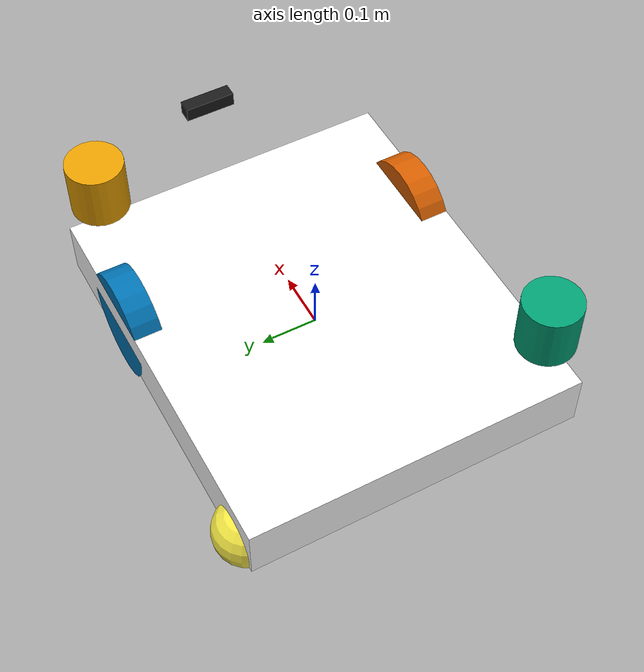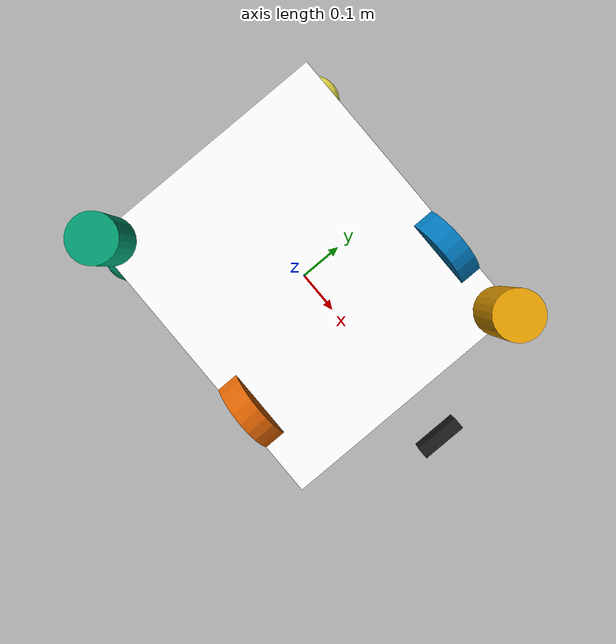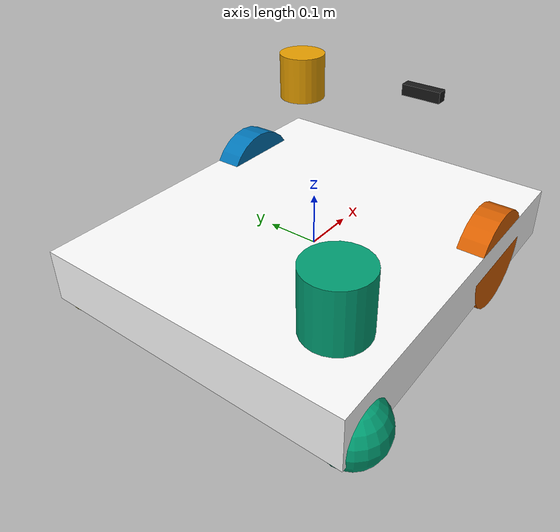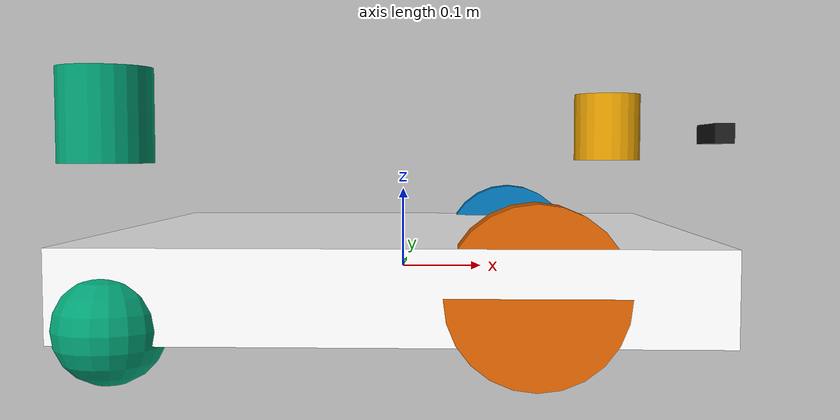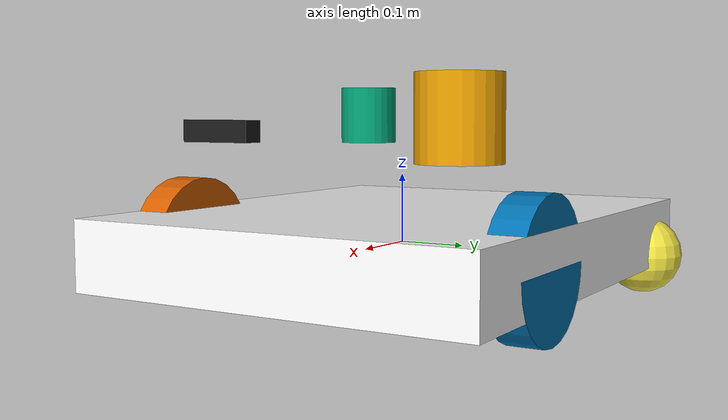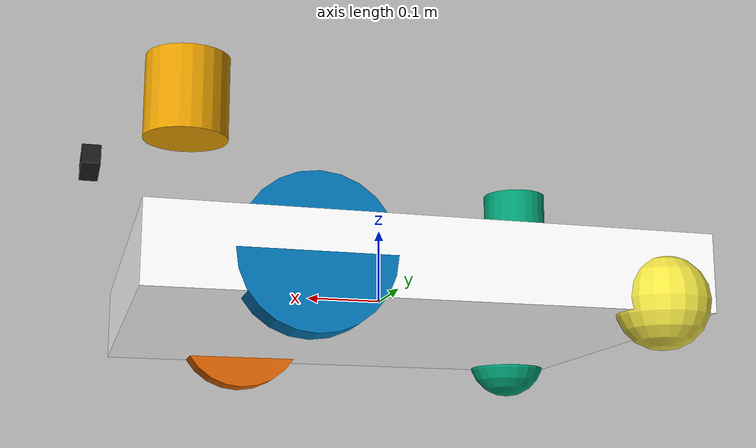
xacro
<?xml version="1.0"?>

<robot name="movensys_navigation" xmlns:xacro="http://www.ros.org/wiki/xacro">

    <xacro:include filename="$(find movensys_navigation_description)/urdf/diffbot/diffbot.xacro" />
    <xacro:include filename="$(find movensys_navigation_description)/urdf/diffbot/perception.xacro" />

    <xacro:diffbot />

</robot>

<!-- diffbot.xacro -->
<robot xmlns:xacro="http://www.ros.org/wiki/xacro">

<xacro:macro name="diffbot">

  	<link name="base_link">
		<visual>
			<geometry>
				<box size="0.7 0.6 0.1"></box>
			</geometry>
			<origin rpy="0 0 0" xyz="0 0 0"></origin>
      		<material name="">
        		<color rgba="1 1 1 1" />
      		</material>
		</visual>
		<collision>
			<geometry>
				<box size="0.7 0.6 0.1"></box>
			</geometry>
			<origin rpy="0 0 0" xyz="0 0 0"></origin>
		</collision>
		<inertial>
			<origin rpy="0 0 0" xyz="0 0 0"></origin>
			<mass value="500.0"></mass>
			<inertia ixx="55.20416666666666" ixy="0" ixz="0"
					iyy="61.21770833333333" iyz="0" izz="33.088541666666664"></inertia>
		</inertial>
	</link>

	<joint name="castor_rear_right_joint" type="fixed">
		<parent link="base_link"></parent>
		<child link="castor_rear_right"></child>
		<origin rpy="0 0 0" xyz="-0.29 -0.275 -0.035"></origin>
		<axis xyz="0 1 0"></axis>
	</joint>

	<link name="castor_rear_right">
		<visual>
			<geometry>
				<sphere radius="0.06"></sphere>
			</geometry>
			<origin rpy="0 0 0" xyz="0 0 0"></origin>
		</visual>
    	<collision>
			<geometry>
				<sphere radius="0.06"></sphere>
			</geometry>
			<origin xyz="0 0 0"></origin>
		</collision>
		<inertial>
			<origin xyz="0 0 0"></origin>
			<mass value="3.0"></mass>
			<inertia ixx="0.001" ixy="0" ixz="0"
					 iyy="0.001" iyz="0" izz="0.001"></inertia>
		</inertial>
	</link>

	<joint name="castor_rear_left_joint" type="fixed">
		<parent link="base_link"></parent>
		<child link="castor_rear_left"></child>
		<origin rpy="0 0 0" xyz="-0.29 0.275 -0.035"></origin>
		<axis xyz="0 1 0"></axis>
	</joint>

	<link name="castor_rear_left">
		<visual>
			<geometry>
				<sphere radius="0.06"></sphere>
			</geometry>
			<origin rpy="0 0 0" xyz="0 0 0"></origin>
		</visual>
    	<collision>
			<geometry>
				<sphere radius="0.06"></sphere>
			</geometry>
			<origin xyz="0 0 0"></origin>
		</collision>
		<inertial>
			<origin xyz="0 0 0"></origin>
			<mass value="3.0"></mass>
			<inertia ixx="0.001" ixy="0" ixz="0"
					 iyy="0.001" iyz="0" izz="0.001"></inertia>
		</inertial>
	</link>

	<joint name="drivewheel_left_joint" type="continuous">
		<parent link="base_link"></parent>
		<child link="drivewheel_left"></child>
		<origin rpy="-1.57 0 0" xyz="0.15 0.275 0"></origin>
		<axis xyz="0 0 1"></axis>
		<limit effort="100" velocity="100"></limit>
		<dynamics damping="0.8" friction="0.8"></dynamics>
	</joint>

	<link name="drivewheel_left">
		<visual>
			<geometry>
				<cylinder length="0.05" radius="0.095"></cylinder>
			</geometry>
			<origin rpy="0 0 0" xyz="0 0 0"></origin>
		</visual>
		<collision>
			<geometry>
				<cylinder length="0.05" radius="0.095"></cylinder>
			</geometry>
			<origin rpy="0 0 0" xyz="0 0 0"></origin>
		</collision>
		<inertial>
			<origin rpy="0 0 0" xyz="0 0 0"></origin>
			<mass value="40"></mass>
			<inertia ixx="0.08775" ixy="0" ixz="0"
					 iyy="0.08775" iyz="0" izz="0.16199999999999998"></inertia>
		</inertial>
	</link>

	<joint name="drivewheel_right_joint" type="continuous">
		<parent link="base_link"></parent>
		<child link="drivewheel_right"></child>
		<origin rpy="1.57 0 0" xyz="0.15 -0.275 0"></origin>
		<axis xyz="0 0 -1"></axis>
		<limit effort="100" velocity="100"></limit>
		<dynamics damping="0.8" friction="0.8"></dynamics>
	</joint>

	<link name="drivewheel_right">
		<visual>
			<geometry>
				<cylinder length="0.05" radius="0.095"></cylinder>
			</geometry>
			<origin rpy="0 0 0" xyz="0 0 0"></origin>
		</visual>
		<collision>
			<geometry>
				<cylinder length="0.05" radius="0.095"></cylinder>
			</geometry>
			<origin rpy="0 0 0" xyz="0 0 0"></origin>
		</collision>
		<inertial>
			<origin rpy="0 0 0" xyz="0 0 0"></origin>
			<mass value="40"></mass>
			<inertia ixx="0.08775" ixy="0" ixz="0"
					 iyy="0.08775" iyz="0" izz="0.16199999999999998"></inertia>
		</inertial>
	</link>

  </xacro:macro>

</robot>

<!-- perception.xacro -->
<robot name="amr" xmlns:xacro="http://ros.org/wiki/xacro">

	<joint name="lidar_front_left_joint" type="fixed">
		<origin xyz="0.3 0.25 0.185" rpy="0 0 0.7853981633974484"/>
		<parent link="base_link" />
		<child link="lidar_front_left_link" />
		<axis xyz="0 0 1" />
	</joint>

	<link name="lidar_front_left_link">
		<inertial>
			<origin xyz="0 0 0" rpy="0 0 0" />
			<mass value="0.130" />
			<inertia ixx="4E-06" ixy="0" ixz="0"
                     iyy="4E-06"  iyz="0" izz="4E-06" />
		</inertial>
		<collision>
			<origin xyz="0 0 0" rpy="0 0 0"/>
			<geometry>
				<cylinder length="0.1" radius="0.05"></cylinder>
			</geometry>
		</collision>
		<visual>
			<origin xyz="0 0 0" rpy="0 0 0"/>
			<geometry>
				<cylinder length="0.1" radius="0.05"></cylinder>
			</geometry>
		</visual>
	</link>

	<joint name="ray_front_left_joint" type="fixed">
        <parent link="lidar_front_left_link"/>
        <child link="ray_front_left_link"/>
        <origin rpy="0 0 0" xyz="0 0 0"/>
	</joint>

	<link name="ray_front_left_link">
        <visual>
            <origin rpy="0 0 0" xyz="0 0 0"/>
            <geometry>
                <box size="0.001 0.001 0.001"/>
            </geometry>
        </visual>
	</link>

    <joint name="lidar_rear_right_joint" type="fixed">
		<origin xyz="-0.3 -0.25 0.185" rpy="0 0 -2.356194490192345"/>
		<parent link="base_link" />
		<child link="lidar_rear_right_link" />
		<axis xyz="0 0 1" />
	</joint>

	<link name="lidar_rear_right_link">
		<inertial>
			<origin xyz="0 0 0" rpy="0 0 0" />
			<mass value="0.130" />
			<inertia ixx="4E-06" ixy="0" ixz="0"
                     iyy="4E-06"  iyz="0" izz="4E-06" />
		</inertial>
		<collision>
			<origin xyz="0 0 0" rpy="0 0 0"/>
			<geometry>
				<cylinder length="0.1" radius="0.05"></cylinder>
			</geometry>
		</collision>
		<visual>
			<origin xyz="0 0 0" rpy="0 0 0"/>
			<geometry>
				<cylinder length="0.1" radius="0.05"></cylinder>
			</geometry>
		</visual>
	</link>

	<joint name="ray_rear_right_joint" type="fixed">
        <parent link="lidar_rear_right_link"/>
        <child link="ray_rear_right_link"/>
        <origin rpy="0 0 0" xyz="0 0 0"/>
	</joint>

	<link name="ray_rear_right_link">
        <visual>
            <origin rpy="0 0 0" xyz="0 0 0"/>
            <geometry>
                <box size="0.001 0.001 0.001"/>
            </geometry>
        </visual>
	</link>

	<joint name="imu_joint" type="fixed">
        <parent link="base_link"/>
        <child link="imu_link"/>
        <origin rpy="0 0 0" xyz="0 0 0"/>
    </joint>

    <link name="imu_link">
        <inertial>
            <mass value="0.001"/>
            <origin rpy="0 0 0" xyz="0 0 0"/>
            <inertia ixx="0.0001" ixy="0" ixz="0" iyy="0.0001" iyz="0" izz="0.0001"/>
        </inertial>
        <visual>
            <origin rpy="0 0 0" xyz="0 0 0"/>
            <geometry>
                <box size="0.001 0.001 0.001"/>
            </geometry>
        </visual>
    </link>

    <joint name="imu_to_value" type="fixed">
        <parent link="imu_link"/>
        <child link="value_link"/>
        <origin rpy="0 0 0" xyz="0 0 0"/>
    </joint>

    <link name="value_link">
        <visual>
            <origin rpy="0 0 0" xyz="0 0 0"/>
            <geometry>
                <box size="0.001 0.001 0.001"/>
            </geometry>
        </visual>
    </link>

    <joint name="camera_joint" type="fixed">
        <parent link="base_link"/>
        <child link="camera_front_link"/>
        <origin rpy="0 0 0" xyz="0.4 0.0 0.17"/>
    </joint>

    <link name="camera_front_link">
        <inertial>
            <mass value="0.072"/>
            <origin rpy="0 0 0" xyz="0 0 0"/>
            <inertia ixx="0.0001" ixy="0" ixz="0" iyy="0.0001" iyz="0" izz="0.0001"/>
        </inertial>
        <visual>
            <origin rpy="0 0 0" xyz="0 0 0"/>
            <geometry>
                <box size="0.025 0.09 0.025"/>
            </geometry>
            <material name="">
                <color rgba="0.1 0.1 0.1 1"/>
            </material>
        </visual>
        <collision>
            <origin rpy="0 0 0" xyz="0 0 0"/>
            <geometry>
                <box size="0.025 0.09 0.025"/>
            </geometry>
        </collision>
    </link>

    <xacro:arg name="urdf_camera_optical_tf" default="true"/>
    <xacro:if value="$(arg urdf_camera_optical_tf)">
        <joint name="camera_front_infra1_optical_joint" type="fixed">
            <parent link="camera_front_link"/>
            <child link="camera_front_infra1_optical_frame"/>
            <origin xyz="0 0 0" rpy="-1.5707963 0 -1.5707963"/>
        </joint>

        <link name="camera_front_infra1_optical_frame"/>

        <joint name="camera_front_infra2_optical_joint" type="fixed">
            <parent link="camera_front_link"/>
            <child link="camera_front_infra2_optical_frame"/>
            <origin xyz="0 -0.095 0" rpy="-1.5707963 0 -1.5707963"/>
        </joint>

        <link name="camera_front_infra2_optical_frame"/>
    </xacro:if>

</robot>
